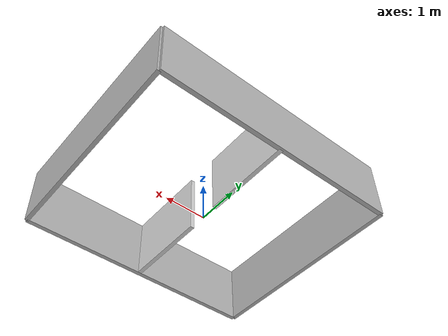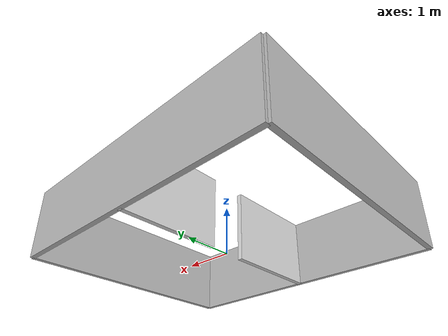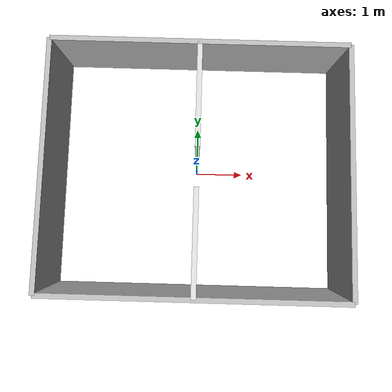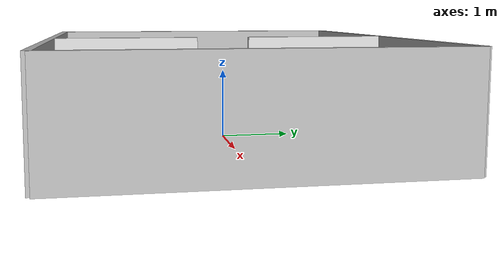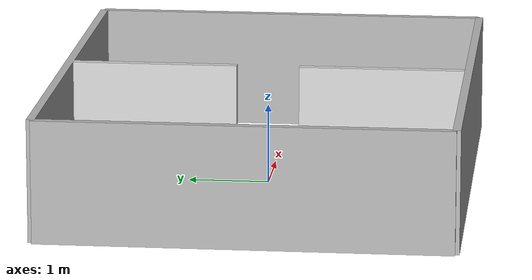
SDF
<?xml version="1.0"?>
<sdf version="1.9">
  <model name="leo_nav2_doorway_fixture">
    <static>true</static>

    <link name="door_wall_lower">
      <pose>0 -1.445 0.75 0 0 0</pose>
      <collision name="collision">
        <geometry><box><size>0.10 2.11 1.50</size></box></geometry>
      </collision>
      <visual name="visual">
        <geometry><box><size>0.10 2.11 1.50</size></box></geometry>
        <material><ambient>0.85 0.85 0.85 1</ambient><diffuse>0.85 0.85 0.85 1</diffuse></material>
      </visual>
    </link>

    <link name="door_wall_upper">
      <pose>0 1.445 0.75 0 0 0</pose>
      <collision name="collision">
        <geometry><box><size>0.10 2.11 1.50</size></box></geometry>
      </collision>
      <visual name="visual">
        <geometry><box><size>0.10 2.11 1.50</size></box></geometry>
        <material><ambient>0.85 0.85 0.85 1</ambient><diffuse>0.85 0.85 0.85 1</diffuse></material>
      </visual>
    </link>

    <link name="north_wall">
      <pose>0 2.50 0.75 0 0 0</pose>
      <collision name="collision"><geometry><box><size>6.00 0.10 1.50</size></box></geometry></collision>
      <visual name="visual"><geometry><box><size>6.00 0.10 1.50</size></box></geometry></visual>
    </link>
    <link name="south_wall">
      <pose>0 -2.50 0.75 0 0 0</pose>
      <collision name="collision"><geometry><box><size>6.00 0.10 1.50</size></box></geometry></collision>
      <visual name="visual"><geometry><box><size>6.00 0.10 1.50</size></box></geometry></visual>
    </link>
    <link name="west_wall">
      <pose>-3.00 0 0.75 0 0 0</pose>
      <collision name="collision"><geometry><box><size>0.10 5.00 1.50</size></box></geometry></collision>
      <visual name="visual"><geometry><box><size>0.10 5.00 1.50</size></box></geometry></visual>
    </link>
    <link name="east_wall">
      <pose>3.00 0 0.75 0 0 0</pose>
      <collision name="collision"><geometry><box><size>0.10 5.00 1.50</size></box></geometry></collision>
      <visual name="visual"><geometry><box><size>0.10 5.00 1.50</size></box></geometry></visual>
    </link>
  </model>
</sdf>
